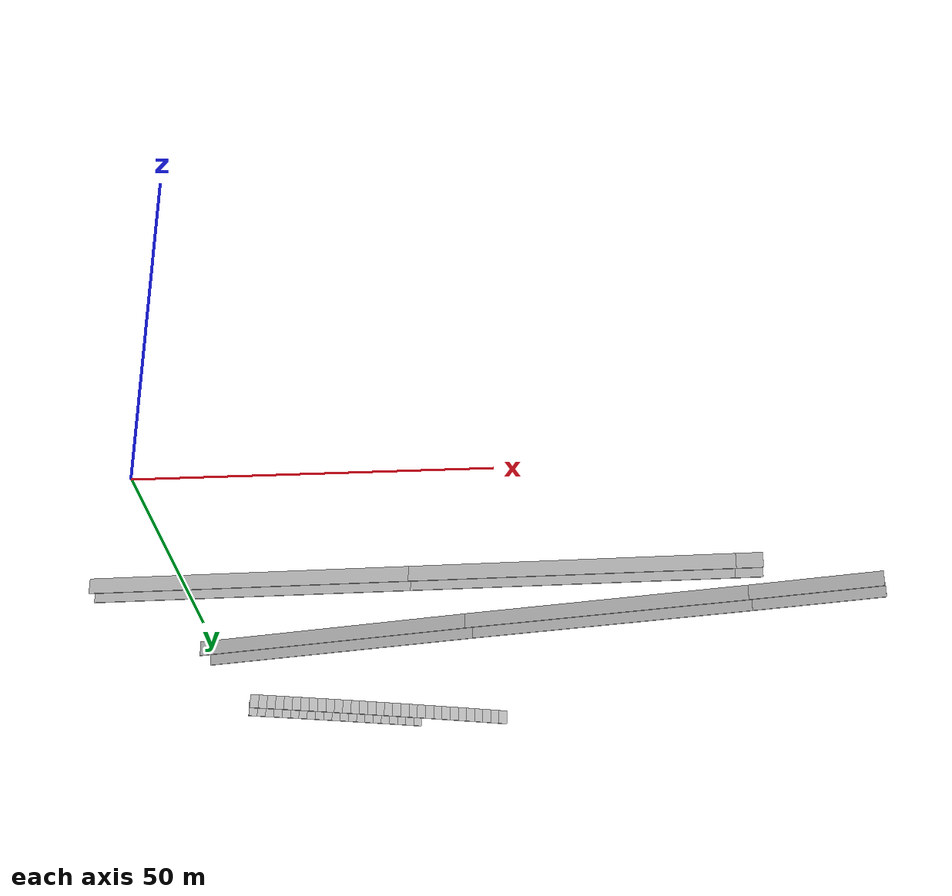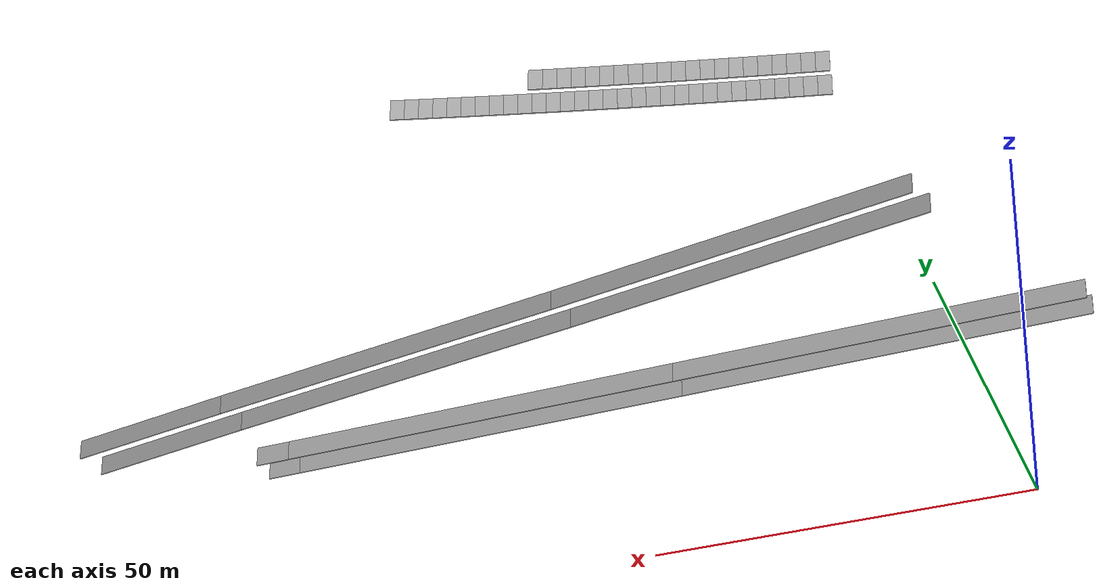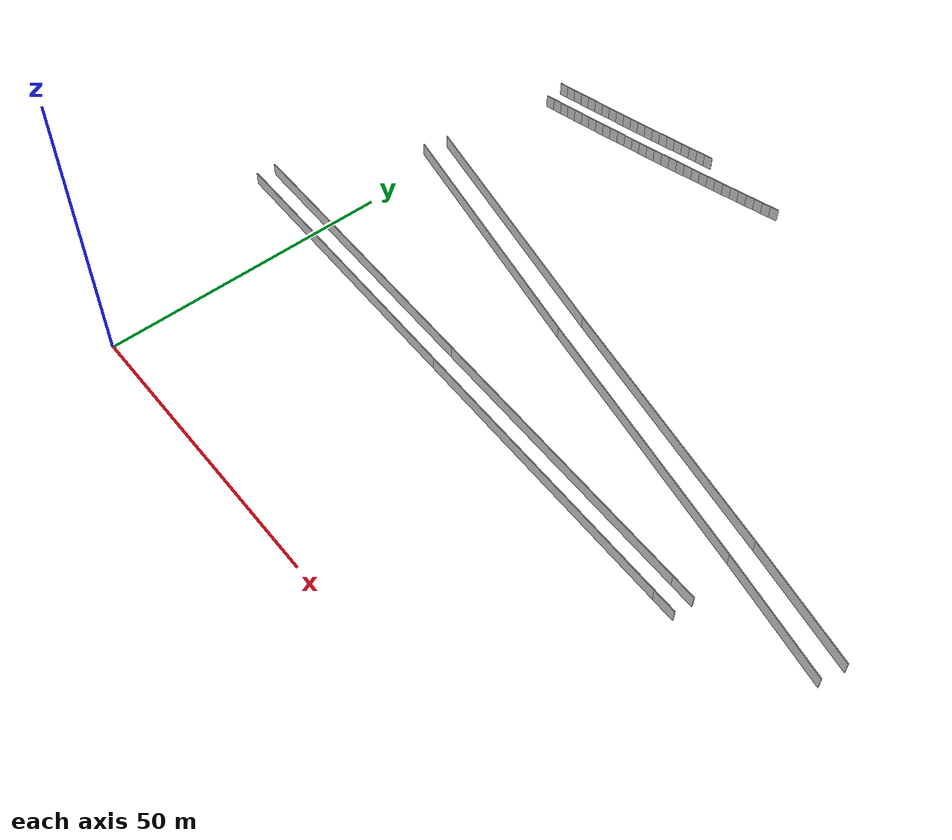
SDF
<?xml version="1.0" ?>
<sdf version="1.6">
  <model name="sps_1501">
    <pose frame="">0 0 0 0 -0 0</pose>
    <static>1</static>
    <self_collide>0</self_collide>
    <allow_auto_disable>0</allow_auto_disable>
    <link name="Wall54">
      <kinematic>0</kinematic>
      <gravity>1</gravity>
      <self_collide>0</self_collide>
      <collision name="collision">
        <geometry>
          <box>
            <size>21.0271 0.15 2.5</size>
          </box>
        </geometry>
        <pose frame="">0 0 0 0 -0 0</pose>
      </collision>
      <visual name="visual">
        <geometry>
          <box>
            <size>21.0271 0.15 2.5</size>
          </box>
        </geometry>
        <pose frame="">0 0 0 0 -0 0</pose>
        <cast_shadows>1</cast_shadows>
        <transparency>0.0</transparency>
      </visual>
      <pose frame="">97.2691 44.9379 1.25 0 0 -0.189984</pose>
    </link>
    <link name="Wall241">
      <kinematic>0</kinematic>
      <gravity>1</gravity>
      <self_collide>0</self_collide>
      <collision name="collision">
        <geometry>
          <box>
            <size>20.976 0.15 2.5</size>
          </box>
        </geometry>
        <pose frame="">0 0 0 0 -0 0</pose>
      </collision>
      <visual name="visual">
        <geometry>
          <box>
            <size>20.976 0.15 2.5</size>
          </box>
        </geometry>
        <pose frame="">0 0 0 0 -0 0</pose>
        <cast_shadows>1</cast_shadows>
        <transparency>0.0</transparency>
      </visual>
      <pose frame="">98.0431 49.269 1.25 0 -0 2.9516</pose>
    </link>
    <link name="Wall456">
      <kinematic>0</kinematic>
      <gravity>1</gravity>
      <self_collide>0</self_collide>
      <collision name="collision">
        <geometry>
          <box>
            <size>4.10939 0.15 2.5</size>
          </box>
        </geometry>
        <pose frame="">0 0 0 0 -0 0</pose>
      </collision>
      <visual name="visual">
        <geometry>
          <box>
            <size>4.10939 0.15 2.5</size>
          </box>
        </geometry>
        <pose frame="">0 0 0 0 -0 0</pose>
        <cast_shadows>1</cast_shadows>
        <transparency>0.0</transparency>
      </visual>
      <pose frame="">86.5235 34.9709 1.25 0 -0 3.11591</pose>
    </link>
    <link name="Wall457">
      <kinematic>0</kinematic>
      <gravity>1</gravity>
      <self_collide>0</self_collide>
      <collision name="collision">
        <geometry>
          <box>
            <size>50.0165 0.15 2.5</size>
          </box>
        </geometry>
        <pose frame="">0 0 0 0 -0 0</pose>
      </collision>
      <visual name="visual">
        <geometry>
          <box>
            <size>50.0165 0.15 2.5</size>
          </box>
        </geometry>
        <pose frame="">0 0 0 0 -0 0</pose>
        <cast_shadows>1</cast_shadows>
        <transparency>0.0</transparency>
      </visual>
      <pose frame="">59.4694 35.6658 1.25 0 -0 3.11591</pose>
    </link>
    <link name="Wall458">
      <kinematic>0</kinematic>
      <gravity>1</gravity>
      <self_collide>0</self_collide>
      <collision name="collision">
        <geometry>
          <box>
            <size>50.0165 0.15 2.5</size>
          </box>
        </geometry>
        <pose frame="">0 0 0 0 -0 0</pose>
      </collision>
      <visual name="visual">
        <geometry>
          <box>
            <size>50.0165 0.15 2.5</size>
          </box>
        </geometry>
        <pose frame="">0 0 0 0 -0 0</pose>
        <cast_shadows>1</cast_shadows>
        <transparency>0.0</transparency>
      </visual>
      <pose frame="">9.46944 36.95 1.25 0 -0 3.11591</pose>
    </link>
    <link name="Wall467">
      <kinematic>0</kinematic>
      <gravity>1</gravity>
      <self_collide>0</self_collide>
      <collision name="collision">
        <geometry>
          <box>
            <size>50.0165 0.15 2.5</size>
          </box>
        </geometry>
        <pose frame="">0 0 0 0 -0 0</pose>
      </collision>
      <visual name="visual">
        <geometry>
          <box>
            <size>50.0165 0.15 2.5</size>
          </box>
        </geometry>
        <pose frame="">0 0 0 0 -0 0</pose>
        <cast_shadows>1</cast_shadows>
        <transparency>0.0</transparency>
      </visual>
      <pose frame="">9.46944 40.4509 1.25 0 0 -0.0256802</pose>
    </link>
    <link name="Wall468">
      <kinematic>0</kinematic>
      <gravity>1</gravity>
      <self_collide>0</self_collide>
      <collision name="collision">
        <geometry>
          <box>
            <size>50.0165 0.15 2.5</size>
          </box>
        </geometry>
        <pose frame="">0 0 0 0 -0 0</pose>
      </collision>
      <visual name="visual">
        <geometry>
          <box>
            <size>50.0165 0.15 2.5</size>
          </box>
        </geometry>
        <pose frame="">0 0 0 0 -0 0</pose>
        <cast_shadows>1</cast_shadows>
        <transparency>0.0</transparency>
      </visual>
      <pose frame="">59.4694 39.1666 1.25 0 0 -0.0256802</pose>
    </link>
    <link name="Wall469">
      <kinematic>0</kinematic>
      <gravity>1</gravity>
      <self_collide>0</self_collide>
      <collision name="collision">
        <geometry>
          <box>
            <size>4.2376 0.15 2.5</size>
          </box>
        </geometry>
        <pose frame="">0 0 0 0 -0 0</pose>
      </collision>
      <visual name="visual">
        <geometry>
          <box>
            <size>4.2376 0.15 2.5</size>
          </box>
        </geometry>
        <pose frame="">0 0 0 0 -0 0</pose>
        <cast_shadows>1</cast_shadows>
        <transparency>0.0</transparency>
      </visual>
      <pose frame="">86.5875 38.4701 1.25 0 0 -0.0256802</pose>
    </link>
    <link name="Wall3619">
      <kinematic>0</kinematic>
      <gravity>1</gravity>
      <self_collide>0</self_collide>
      <collision name="collision">
        <geometry>
          <box>
            <size>45.9354 0.15 2.5</size>
          </box>
        </geometry>
        <pose frame="">0 0 0 0 -0 0</pose>
      </collision>
      <visual name="visual">
        <geometry>
          <box>
            <size>45.9354 0.15 2.5</size>
          </box>
        </geometry>
        <pose frame="">0 0 0 0 -0 0</pose>
        <cast_shadows>1</cast_shadows>
        <transparency>0.0</transparency>
      </visual>
      <pose frame="">64.3456 51.0216 1.25 0 -0 2.96219</pose>
    </link>
    <link name="Wall3620">
      <kinematic>0</kinematic>
      <gravity>1</gravity>
      <self_collide>0</self_collide>
      <collision name="collision">
        <geometry>
          <box>
            <size>45.9354 0.15 2.5</size>
          </box>
        </geometry>
        <pose frame="">0 0 0 0 -0 0</pose>
      </collision>
      <visual name="visual">
        <geometry>
          <box>
            <size>45.9354 0.15 2.5</size>
          </box>
        </geometry>
        <pose frame="">0 0 0 0 -0 0</pose>
        <cast_shadows>1</cast_shadows>
        <transparency>0.0</transparency>
      </visual>
      <pose frame="">19.2007 59.5019 1.25 0 -0 2.94963</pose>
    </link>
    <link name="Wall3846">
      <kinematic>0</kinematic>
      <gravity>1</gravity>
      <self_collide>0</self_collide>
      <collision name="collision">
        <geometry>
          <box>
            <size>1.49651 0.15 2.5</size>
          </box>
        </geometry>
        <pose frame="">0 0 0 0 -0 0</pose>
      </collision>
      <visual name="visual">
        <geometry>
          <box>
            <size>1.49651 0.15 2.5</size>
          </box>
        </geometry>
        <pose frame="">0 0 0 0 -0 0</pose>
        <cast_shadows>1</cast_shadows>
        <transparency>0.0</transparency>
      </visual>
      <pose frame="">0.447166 92.7136 1.25 0 -0 0.224402</pose>
    </link>
    <link name="Wall3847">
      <kinematic>0</kinematic>
      <gravity>1</gravity>
      <self_collide>0</self_collide>
      <collision name="collision">
        <geometry>
          <box>
            <size>1.49664 0.15 2.5</size>
          </box>
        </geometry>
        <pose frame="">0 0 0 0 -0 0</pose>
      </collision>
      <visual name="visual">
        <geometry>
          <box>
            <size>1.49664 0.15 2.5</size>
          </box>
        </geometry>
        <pose frame="">0 0 0 0 -0 0</pose>
        <cast_shadows>1</cast_shadows>
        <transparency>0.0</transparency>
      </visual>
      <pose frame="">1.90597 93.0477 1.25 0 -0 0.225888</pose>
    </link>
    <link name="Wall3848">
      <kinematic>0</kinematic>
      <gravity>1</gravity>
      <self_collide>0</self_collide>
      <collision name="collision">
        <geometry>
          <box>
            <size>1.49658 0.15 2.5</size>
          </box>
        </geometry>
        <pose frame="">0 0 0 0 -0 0</pose>
      </collision>
      <visual name="visual">
        <geometry>
          <box>
            <size>1.49658 0.15 2.5</size>
          </box>
        </geometry>
        <pose frame="">0 0 0 0 -0 0</pose>
        <cast_shadows>1</cast_shadows>
        <transparency>0.0</transparency>
      </visual>
      <pose frame="">3.36428 93.3841 1.25 0 -0 0.227529</pose>
    </link>
    <link name="Wall3849">
      <kinematic>0</kinematic>
      <gravity>1</gravity>
      <self_collide>0</self_collide>
      <collision name="collision">
        <geometry>
          <box>
            <size>1.49644 0.15 2.5</size>
          </box>
        </geometry>
        <pose frame="">0 0 0 0 -0 0</pose>
      </collision>
      <visual name="visual">
        <geometry>
          <box>
            <size>1.49644 0.15 2.5</size>
          </box>
        </geometry>
        <pose frame="">0 0 0 0 -0 0</pose>
        <cast_shadows>1</cast_shadows>
        <transparency>0.0</transparency>
      </visual>
      <pose frame="">4.82198 93.7227 1.25 0 -0 0.228933</pose>
    </link>
    <link name="Wall3850">
      <kinematic>0</kinematic>
      <gravity>1</gravity>
      <self_collide>0</self_collide>
      <collision name="collision">
        <geometry>
          <box>
            <size>1.49662 0.15 2.5</size>
          </box>
        </geometry>
        <pose frame="">0 0 0 0 -0 0</pose>
      </collision>
      <visual name="visual">
        <geometry>
          <box>
            <size>1.49662 0.15 2.5</size>
          </box>
        </geometry>
        <pose frame="">0 0 0 0 -0 0</pose>
        <cast_shadows>1</cast_shadows>
        <transparency>0.0</transparency>
      </visual>
      <pose frame="">6.27917 94.0636 1.25 0 -0 0.230705</pose>
    </link>
    <link name="Wall3851">
      <kinematic>0</kinematic>
      <gravity>1</gravity>
      <self_collide>0</self_collide>
      <collision name="collision">
        <geometry>
          <box>
            <size>1.49663 0.15 2.5</size>
          </box>
        </geometry>
        <pose frame="">0 0 0 0 -0 0</pose>
      </collision>
      <visual name="visual">
        <geometry>
          <box>
            <size>1.49663 0.15 2.5</size>
          </box>
        </geometry>
        <pose frame="">0 0 0 0 -0 0</pose>
        <cast_shadows>1</cast_shadows>
        <transparency>0.0</transparency>
      </visual>
      <pose frame="">7.73586 94.407 1.25 0 -0 0.232338</pose>
    </link>
    <link name="Wall3852">
      <kinematic>0</kinematic>
      <gravity>1</gravity>
      <self_collide>0</self_collide>
      <collision name="collision">
        <geometry>
          <box>
            <size>1.49655 0.15 2.5</size>
          </box>
        </geometry>
        <pose frame="">0 0 0 0 -0 0</pose>
      </collision>
      <visual name="visual">
        <geometry>
          <box>
            <size>1.49655 0.15 2.5</size>
          </box>
        </geometry>
        <pose frame="">0 0 0 0 -0 0</pose>
        <cast_shadows>1</cast_shadows>
        <transparency>0.0</transparency>
      </visual>
      <pose frame="">9.19198 94.7527 1.25 0 -0 0.23386</pose>
    </link>
    <link name="Wall3853">
      <kinematic>0</kinematic>
      <gravity>1</gravity>
      <self_collide>0</self_collide>
      <collision name="collision">
        <geometry>
          <box>
            <size>1.49647 0.15 2.5</size>
          </box>
        </geometry>
        <pose frame="">0 0 0 0 -0 0</pose>
      </collision>
      <visual name="visual">
        <geometry>
          <box>
            <size>1.49647 0.15 2.5</size>
          </box>
        </geometry>
        <pose frame="">0 0 0 0 -0 0</pose>
        <cast_shadows>1</cast_shadows>
        <transparency>0.0</transparency>
      </visual>
      <pose frame="">10.6475 95.1006 1.25 0 -0 0.235383</pose>
    </link>
    <link name="Wall3854">
      <kinematic>0</kinematic>
      <gravity>1</gravity>
      <self_collide>0</self_collide>
      <collision name="collision">
        <geometry>
          <box>
            <size>1.49656 0.15 2.5</size>
          </box>
        </geometry>
        <pose frame="">0 0 0 0 -0 0</pose>
      </collision>
      <visual name="visual">
        <geometry>
          <box>
            <size>1.49656 0.15 2.5</size>
          </box>
        </geometry>
        <pose frame="">0 0 0 0 -0 0</pose>
        <cast_shadows>1</cast_shadows>
        <transparency>0.0</transparency>
      </visual>
      <pose frame="">12.1025 95.4507 1.25 0 -0 0.236877</pose>
    </link>
    <link name="Wall3855">
      <kinematic>0</kinematic>
      <gravity>1</gravity>
      <self_collide>0</self_collide>
      <collision name="collision">
        <geometry>
          <box>
            <size>1.49635 0.15 2.5</size>
          </box>
        </geometry>
        <pose frame="">0 0 0 0 -0 0</pose>
      </collision>
      <visual name="visual">
        <geometry>
          <box>
            <size>1.49635 0.15 2.5</size>
          </box>
        </geometry>
        <pose frame="">0 0 0 0 -0 0</pose>
        <cast_shadows>1</cast_shadows>
        <transparency>0.0</transparency>
      </visual>
      <pose frame="">13.5568 95.8031 1.25 0 -0 0.238548</pose>
    </link>
    <link name="Wall3856">
      <kinematic>0</kinematic>
      <gravity>1</gravity>
      <self_collide>0</self_collide>
      <collision name="collision">
        <geometry>
          <box>
            <size>1.49658 0.15 2.5</size>
          </box>
        </geometry>
        <pose frame="">0 0 0 0 -0 0</pose>
      </collision>
      <visual name="visual">
        <geometry>
          <box>
            <size>1.49658 0.15 2.5</size>
          </box>
        </geometry>
        <pose frame="">0 0 0 0 -0 0</pose>
        <cast_shadows>1</cast_shadows>
        <transparency>0.0</transparency>
      </visual>
      <pose frame="">15.0106 96.1579 1.25 0 -0 0.240191</pose>
    </link>
    <link name="Wall3857">
      <kinematic>0</kinematic>
      <gravity>1</gravity>
      <self_collide>0</self_collide>
      <collision name="collision">
        <geometry>
          <box>
            <size>1.49673 0.15 2.5</size>
          </box>
        </geometry>
        <pose frame="">0 0 0 0 -0 0</pose>
      </collision>
      <visual name="visual">
        <geometry>
          <box>
            <size>1.49673 0.15 2.5</size>
          </box>
        </geometry>
        <pose frame="">0 0 0 0 -0 0</pose>
        <cast_shadows>1</cast_shadows>
        <transparency>0.0</transparency>
      </visual>
      <pose frame="">16.464 96.5151 1.25 0 -0 0.241804</pose>
    </link>
    <link name="Wall3858">
      <kinematic>0</kinematic>
      <gravity>1</gravity>
      <self_collide>0</self_collide>
      <collision name="collision">
        <geometry>
          <box>
            <size>1.49649 0.15 2.5</size>
          </box>
        </geometry>
        <pose frame="">0 0 0 0 -0 0</pose>
      </collision>
      <visual name="visual">
        <geometry>
          <box>
            <size>1.49649 0.15 2.5</size>
          </box>
        </geometry>
        <pose frame="">0 0 0 0 -0 0</pose>
        <cast_shadows>1</cast_shadows>
        <transparency>0.0</transparency>
      </visual>
      <pose frame="">17.9168 96.8746 1.25 0 -0 0.243356</pose>
    </link>
    <link name="Wall3859">
      <kinematic>0</kinematic>
      <gravity>1</gravity>
      <self_collide>0</self_collide>
      <collision name="collision">
        <geometry>
          <box>
            <size>1.49649 0.15 2.5</size>
          </box>
        </geometry>
        <pose frame="">0 0 0 0 -0 0</pose>
      </collision>
      <visual name="visual">
        <geometry>
          <box>
            <size>1.49649 0.15 2.5</size>
          </box>
        </geometry>
        <pose frame="">0 0 0 0 -0 0</pose>
        <cast_shadows>1</cast_shadows>
        <transparency>0.0</transparency>
      </visual>
      <pose frame="">19.3689 97.2363 1.25 0 -0 0.24487</pose>
    </link>
    <link name="Wall3860">
      <kinematic>0</kinematic>
      <gravity>1</gravity>
      <self_collide>0</self_collide>
      <collision name="collision">
        <geometry>
          <box>
            <size>1.49643 0.15 2.5</size>
          </box>
        </geometry>
        <pose frame="">0 0 0 0 -0 0</pose>
      </collision>
      <visual name="visual">
        <geometry>
          <box>
            <size>1.49643 0.15 2.5</size>
          </box>
        </geometry>
        <pose frame="">0 0 0 0 -0 0</pose>
        <cast_shadows>1</cast_shadows>
        <transparency>0.0</transparency>
      </visual>
      <pose frame="">20.8205 97.6003 1.25 0 -0 0.246561</pose>
    </link>
    <link name="Wall3861">
      <kinematic>0</kinematic>
      <gravity>1</gravity>
      <self_collide>0</self_collide>
      <collision name="collision">
        <geometry>
          <box>
            <size>1.49646 0.15 2.5</size>
          </box>
        </geometry>
        <pose frame="">0 0 0 0 -0 0</pose>
      </collision>
      <visual name="visual">
        <geometry>
          <box>
            <size>1.49646 0.15 2.5</size>
          </box>
        </geometry>
        <pose frame="">0 0 0 0 -0 0</pose>
        <cast_shadows>1</cast_shadows>
        <transparency>0.0</transparency>
      </visual>
      <pose frame="">22.2714 97.9667 1.25 0 -0 0.248154</pose>
    </link>
    <link name="Wall3862">
      <kinematic>0</kinematic>
      <gravity>1</gravity>
      <self_collide>0</self_collide>
      <collision name="collision">
        <geometry>
          <box>
            <size>1.49656 0.15 2.5</size>
          </box>
        </geometry>
        <pose frame="">0 0 0 0 -0 0</pose>
      </collision>
      <visual name="visual">
        <geometry>
          <box>
            <size>1.49656 0.15 2.5</size>
          </box>
        </geometry>
        <pose frame="">0 0 0 0 -0 0</pose>
        <cast_shadows>1</cast_shadows>
        <transparency>0.0</transparency>
      </visual>
      <pose frame="">23.7218 98.3353 1.25 0 -0 0.249568</pose>
    </link>
    <link name="Wall3863">
      <kinematic>0</kinematic>
      <gravity>1</gravity>
      <self_collide>0</self_collide>
      <collision name="collision">
        <geometry>
          <box>
            <size>1.4966 0.15 2.5</size>
          </box>
        </geometry>
        <pose frame="">0 0 0 0 -0 0</pose>
      </collision>
      <visual name="visual">
        <geometry>
          <box>
            <size>1.4966 0.15 2.5</size>
          </box>
        </geometry>
        <pose frame="">0 0 0 0 -0 0</pose>
        <cast_shadows>1</cast_shadows>
        <transparency>0.0</transparency>
      </visual>
      <pose frame="">25.1717 98.7062 1.25 0 -0 0.251329</pose>
    </link>
    <link name="Wall3864">
      <kinematic>0</kinematic>
      <gravity>1</gravity>
      <self_collide>0</self_collide>
      <collision name="collision">
        <geometry>
          <box>
            <size>1.49657 0.15 2.5</size>
          </box>
        </geometry>
        <pose frame="">0 0 0 0 -0 0</pose>
      </collision>
      <visual name="visual">
        <geometry>
          <box>
            <size>1.49657 0.15 2.5</size>
          </box>
        </geometry>
        <pose frame="">0 0 0 0 -0 0</pose>
        <cast_shadows>1</cast_shadows>
        <transparency>0.0</transparency>
      </visual>
      <pose frame="">26.621 99.0794 1.25 0 -0 0.252724</pose>
    </link>
    <link name="Wall3865">
      <kinematic>0</kinematic>
      <gravity>1</gravity>
      <self_collide>0</self_collide>
      <collision name="collision">
        <geometry>
          <box>
            <size>1.49657 0.15 2.5</size>
          </box>
        </geometry>
        <pose frame="">0 0 0 0 -0 0</pose>
      </collision>
      <visual name="visual">
        <geometry>
          <box>
            <size>1.49657 0.15 2.5</size>
          </box>
        </geometry>
        <pose frame="">0 0 0 0 -0 0</pose>
        <cast_shadows>1</cast_shadows>
        <transparency>0.0</transparency>
      </visual>
      <pose frame="">28.0697 99.4549 1.25 0 -0 0.254494</pose>
    </link>
    <link name="Wall3866">
      <kinematic>0</kinematic>
      <gravity>1</gravity>
      <self_collide>0</self_collide>
      <collision name="collision">
        <geometry>
          <box>
            <size>1.49661 0.15 2.5</size>
          </box>
        </geometry>
        <pose frame="">0 0 0 0 -0 0</pose>
      </collision>
      <visual name="visual">
        <geometry>
          <box>
            <size>1.49661 0.15 2.5</size>
          </box>
        </geometry>
        <pose frame="">0 0 0 0 -0 0</pose>
        <cast_shadows>1</cast_shadows>
        <transparency>0.0</transparency>
      </visual>
      <pose frame="">29.5178 99.8328 1.25 0 -0 0.256047</pose>
    </link>
    <link name="Wall7394">
      <kinematic>0</kinematic>
      <gravity>1</gravity>
      <self_collide>0</self_collide>
      <collision name="collision">
        <geometry>
          <box>
            <size>45.8892 0.15 2.5</size>
          </box>
        </geometry>
        <pose frame="">0 0 0 0 -0 0</pose>
      </collision>
      <visual name="visual">
        <geometry>
          <box>
            <size>45.8892 0.15 2.5</size>
          </box>
        </geometry>
        <pose frame="">0 0 0 0 -0 0</pose>
        <cast_shadows>1</cast_shadows>
        <transparency>0.0</transparency>
      </visual>
      <pose frame="">65.1674 55.3437 1.25 0 -0 2.9622</pose>
    </link>
    <link name="Wall7395">
      <kinematic>0</kinematic>
      <gravity>1</gravity>
      <self_collide>0</self_collide>
      <collision name="collision">
        <geometry>
          <box>
            <size>45.8889 0.15 2.5</size>
          </box>
        </geometry>
        <pose frame="">0 0 0 0 -0 0</pose>
      </collision>
      <visual name="visual">
        <geometry>
          <box>
            <size>45.8889 0.15 2.5</size>
          </box>
        </geometry>
        <pose frame="">0 0 0 0 -0 0</pose>
        <cast_shadows>1</cast_shadows>
        <transparency>0.0</transparency>
      </visual>
      <pose frame="">20.068 63.8153 1.25 0 -0 2.94962</pose>
    </link>
    <link name="Wall7621">
      <kinematic>0</kinematic>
      <gravity>1</gravity>
      <self_collide>0</self_collide>
      <collision name="collision">
        <geometry>
          <box>
            <size>1.50307 0.15 2.5</size>
          </box>
        </geometry>
        <pose frame="">0 0 0 0 -0 0</pose>
      </collision>
      <visual name="visual">
        <geometry>
          <box>
            <size>1.50307 0.15 2.5</size>
          </box>
        </geometry>
        <pose frame="">0 0 0 0 -0 0</pose>
        <cast_shadows>1</cast_shadows>
        <transparency>0.0</transparency>
      </visual>
      <pose frame="">1.37115 88.6775 1.25 0 -0 0.224364</pose>
    </link>
    <link name="Wall7622">
      <kinematic>0</kinematic>
      <gravity>1</gravity>
      <self_collide>0</self_collide>
      <collision name="collision">
        <geometry>
          <box>
            <size>1.50296 0.15 2.5</size>
          </box>
        </geometry>
        <pose frame="">0 0 0 0 -0 0</pose>
      </collision>
      <visual name="visual">
        <geometry>
          <box>
            <size>1.50296 0.15 2.5</size>
          </box>
        </geometry>
        <pose frame="">0 0 0 0 -0 0</pose>
        <cast_shadows>1</cast_shadows>
        <transparency>0.0</transparency>
      </visual>
      <pose frame="">2.83623 89.013 1.25 0 -0 0.22588</pose>
    </link>
    <link name="Wall7623">
      <kinematic>0</kinematic>
      <gravity>1</gravity>
      <self_collide>0</self_collide>
      <collision name="collision">
        <geometry>
          <box>
            <size>1.50314 0.15 2.5</size>
          </box>
        </geometry>
        <pose frame="">0 0 0 0 -0 0</pose>
      </collision>
      <visual name="visual">
        <geometry>
          <box>
            <size>1.50314 0.15 2.5</size>
          </box>
        </geometry>
        <pose frame="">0 0 0 0 -0 0</pose>
        <cast_shadows>1</cast_shadows>
        <transparency>0.0</transparency>
      </visual>
      <pose frame="">4.30083 89.3508 1.25 0 -0 0.227478</pose>
    </link>
    <link name="Wall7624">
      <kinematic>0</kinematic>
      <gravity>1</gravity>
      <self_collide>0</self_collide>
      <collision name="collision">
        <geometry>
          <box>
            <size>1.50304 0.15 2.5</size>
          </box>
        </geometry>
        <pose frame="">0 0 0 0 -0 0</pose>
      </collision>
      <visual name="visual">
        <geometry>
          <box>
            <size>1.50304 0.15 2.5</size>
          </box>
        </geometry>
        <pose frame="">0 0 0 0 -0 0</pose>
        <cast_shadows>1</cast_shadows>
        <transparency>0.0</transparency>
      </visual>
      <pose frame="">5.76495 89.6909 1.25 0 -0 0.228993</pose>
    </link>
    <link name="Wall7625">
      <kinematic>0</kinematic>
      <gravity>1</gravity>
      <self_collide>0</self_collide>
      <collision name="collision">
        <geometry>
          <box>
            <size>1.50305 0.15 2.5</size>
          </box>
        </geometry>
        <pose frame="">0 0 0 0 -0 0</pose>
      </collision>
      <visual name="visual">
        <geometry>
          <box>
            <size>1.50305 0.15 2.5</size>
          </box>
        </geometry>
        <pose frame="">0 0 0 0 -0 0</pose>
        <cast_shadows>1</cast_shadows>
        <transparency>0.0</transparency>
      </visual>
      <pose frame="">7.22845 90.0334 1.25 0 -0 0.230786</pose>
    </link>
    <link name="Wall7626">
      <kinematic>0</kinematic>
      <gravity>1</gravity>
      <self_collide>0</self_collide>
      <collision name="collision">
        <geometry>
          <box>
            <size>1.50319 0.15 2.5</size>
          </box>
        </geometry>
        <pose frame="">0 0 0 0 -0 0</pose>
      </collision>
      <visual name="visual">
        <geometry>
          <box>
            <size>1.50319 0.15 2.5</size>
          </box>
        </geometry>
        <pose frame="">0 0 0 0 -0 0</pose>
        <cast_shadows>1</cast_shadows>
        <transparency>0.0</transparency>
      </visual>
      <pose frame="">8.69146 90.3783 1.25 0 -0 0.232265</pose>
    </link>
    <link name="Wall7627">
      <kinematic>0</kinematic>
      <gravity>1</gravity>
      <self_collide>0</self_collide>
      <collision name="collision">
        <geometry>
          <box>
            <size>1.50309 0.15 2.5</size>
          </box>
        </geometry>
        <pose frame="">0 0 0 0 -0 0</pose>
      </collision>
      <visual name="visual">
        <geometry>
          <box>
            <size>1.50309 0.15 2.5</size>
          </box>
        </geometry>
        <pose frame="">0 0 0 0 -0 0</pose>
        <cast_shadows>1</cast_shadows>
        <transparency>0.0</transparency>
      </visual>
      <pose frame="">10.154 90.7255 1.25 0 -0 0.233909</pose>
    </link>
    <link name="Wall7628">
      <kinematic>0</kinematic>
      <gravity>1</gravity>
      <self_collide>0</self_collide>
      <collision name="collision">
        <geometry>
          <box>
            <size>1.50302 0.15 2.5</size>
          </box>
        </geometry>
        <pose frame="">0 0 0 0 -0 0</pose>
      </collision>
      <visual name="visual">
        <geometry>
          <box>
            <size>1.50302 0.15 2.5</size>
          </box>
        </geometry>
        <pose frame="">0 0 0 0 -0 0</pose>
        <cast_shadows>1</cast_shadows>
        <transparency>0.0</transparency>
      </visual>
      <pose frame="">11.6158 91.0749 1.25 0 -0 0.235297</pose>
    </link>
    <link name="Wall7629">
      <kinematic>0</kinematic>
      <gravity>1</gravity>
      <self_collide>0</self_collide>
      <collision name="collision">
        <geometry>
          <box>
            <size>1.50305 0.15 2.5</size>
          </box>
        </geometry>
        <pose frame="">0 0 0 0 -0 0</pose>
      </collision>
      <visual name="visual">
        <geometry>
          <box>
            <size>1.50305 0.15 2.5</size>
          </box>
        </geometry>
        <pose frame="">0 0 0 0 -0 0</pose>
        <cast_shadows>1</cast_shadows>
        <transparency>0.0</transparency>
      </visual>
      <pose frame="">13.0771 91.4266 1.25 0 -0 0.23709</pose>
    </link>
    <link name="Wall7630">
      <kinematic>0</kinematic>
      <gravity>1</gravity>
      <self_collide>0</self_collide>
      <collision name="collision">
        <geometry>
          <box>
            <size>1.50319 0.15 2.5</size>
          </box>
        </geometry>
        <pose frame="">0 0 0 0 -0 0</pose>
      </collision>
      <visual name="visual">
        <geometry>
          <box>
            <size>1.50319 0.15 2.5</size>
          </box>
        </geometry>
        <pose frame="">0 0 0 0 -0 0</pose>
        <cast_shadows>1</cast_shadows>
        <transparency>0.0</transparency>
      </visual>
      <pose frame="">14.538 91.7807 1.25 0 -0 0.238528</pose>
    </link>
    <link name="Wall7631">
      <kinematic>0</kinematic>
      <gravity>1</gravity>
      <self_collide>0</self_collide>
      <collision name="collision">
        <geometry>
          <box>
            <size>1.50312 0.15 2.5</size>
          </box>
        </geometry>
        <pose frame="">0 0 0 0 -0 0</pose>
      </collision>
      <visual name="visual">
        <geometry>
          <box>
            <size>1.50312 0.15 2.5</size>
          </box>
        </geometry>
        <pose frame="">0 0 0 0 -0 0</pose>
        <cast_shadows>1</cast_shadows>
        <transparency>0.0</transparency>
      </visual>
      <pose frame="">15.9983 92.1371 1.25 0 -0 0.240212</pose>
    </link>
    <link name="Wall7632">
      <kinematic>0</kinematic>
      <gravity>1</gravity>
      <self_collide>0</self_collide>
      <collision name="collision">
        <geometry>
          <box>
            <size>1.50311 0.15 2.5</size>
          </box>
        </geometry>
        <pose frame="">0 0 0 0 -0 0</pose>
      </collision>
      <visual name="visual">
        <geometry>
          <box>
            <size>1.50311 0.15 2.5</size>
          </box>
        </geometry>
        <pose frame="">0 0 0 0 -0 0</pose>
        <cast_shadows>1</cast_shadows>
        <transparency>0.0</transparency>
      </visual>
      <pose frame="">17.4579 92.4958 1.25 0 -0 0.241719</pose>
    </link>
    <link name="Wall7633">
      <kinematic>0</kinematic>
      <gravity>1</gravity>
      <self_collide>0</self_collide>
      <collision name="collision">
        <geometry>
          <box>
            <size>1.50315 0.15 2.5</size>
          </box>
        </geometry>
        <pose frame="">0 0 0 0 -0 0</pose>
      </collision>
      <visual name="visual">
        <geometry>
          <box>
            <size>1.50315 0.15 2.5</size>
          </box>
        </geometry>
        <pose frame="">0 0 0 0 -0 0</pose>
        <cast_shadows>1</cast_shadows>
        <transparency>0.0</transparency>
      </visual>
      <pose frame="">18.917 92.8569 1.25 0 -0 0.243511</pose>
    </link>
    <link name="Wall7634">
      <kinematic>0</kinematic>
      <gravity>1</gravity>
      <self_collide>0</self_collide>
      <collision name="collision">
        <geometry>
          <box>
            <size>1.50303 0.15 2.5</size>
          </box>
        </geometry>
        <pose frame="">0 0 0 0 -0 0</pose>
      </collision>
      <visual name="visual">
        <geometry>
          <box>
            <size>1.50303 0.15 2.5</size>
          </box>
        </geometry>
        <pose frame="">0 0 0 0 -0 0</pose>
        <cast_shadows>1</cast_shadows>
        <transparency>0.0</transparency>
      </visual>
      <pose frame="">20.3755 93.2203 1.25 0 -0 0.24487</pose>
    </link>
    <link name="Wall7635">
      <kinematic>0</kinematic>
      <gravity>1</gravity>
      <self_collide>0</self_collide>
      <collision name="collision">
        <geometry>
          <box>
            <size>1.50304 0.15 2.5</size>
          </box>
        </geometry>
        <pose frame="">0 0 0 0 -0 0</pose>
      </collision>
      <visual name="visual">
        <geometry>
          <box>
            <size>1.50304 0.15 2.5</size>
          </box>
        </geometry>
        <pose frame="">0 0 0 0 -0 0</pose>
        <cast_shadows>1</cast_shadows>
        <transparency>0.0</transparency>
      </visual>
      <pose frame="">21.8335 93.5858 1.25 0 -0 0.246417</pose>
    </link>
    <link name="Wall7636">
      <kinematic>0</kinematic>
      <gravity>1</gravity>
      <self_collide>0</self_collide>
      <collision name="collision">
        <geometry>
          <box>
            <size>1.50296 0.15 2.5</size>
          </box>
        </geometry>
        <pose frame="">0 0 0 0 -0 0</pose>
      </collision>
      <visual name="visual">
        <geometry>
          <box>
            <size>1.50296 0.15 2.5</size>
          </box>
        </geometry>
        <pose frame="">0 0 0 0 -0 0</pose>
        <cast_shadows>1</cast_shadows>
        <transparency>0.0</transparency>
      </visual>
      <pose frame="">23.2908 93.9536 1.25 0 -0 0.248022</pose>
    </link>
    <link name="Wall7637">
      <kinematic>0</kinematic>
      <gravity>1</gravity>
      <self_collide>0</self_collide>
      <collision name="collision">
        <geometry>
          <box>
            <size>1.50303 0.15 2.5</size>
          </box>
        </geometry>
        <pose frame="">0 0 0 0 -0 0</pose>
      </collision>
      <visual name="visual">
        <geometry>
          <box>
            <size>1.50303 0.15 2.5</size>
          </box>
        </geometry>
        <pose frame="">0 0 0 0 -0 0</pose>
        <cast_shadows>1</cast_shadows>
        <transparency>0.0</transparency>
      </visual>
      <pose frame="">24.7475 94.3238 1.25 0 -0 0.249686</pose>
    </link>
    <link name="Wall7638">
      <kinematic>0</kinematic>
      <gravity>1</gravity>
      <self_collide>0</self_collide>
      <collision name="collision">
        <geometry>
          <box>
            <size>1.50322 0.15 2.5</size>
          </box>
        </geometry>
        <pose frame="">0 0 0 0 -0 0</pose>
      </collision>
      <visual name="visual">
        <geometry>
          <box>
            <size>1.50322 0.15 2.5</size>
          </box>
        </geometry>
        <pose frame="">0 0 0 0 -0 0</pose>
        <cast_shadows>1</cast_shadows>
        <transparency>0.0</transparency>
      </visual>
      <pose frame="">26.2037 94.6964 1.25 0 -0 0.25133</pose>
    </link>
    <link name="Wall7639">
      <kinematic>0</kinematic>
      <gravity>1</gravity>
      <self_collide>0</self_collide>
      <collision name="collision">
        <geometry>
          <box>
            <size>1.50316 0.15 2.5</size>
          </box>
        </geometry>
        <pose frame="">0 0 0 0 -0 0</pose>
      </collision>
      <visual name="visual">
        <geometry>
          <box>
            <size>1.50316 0.15 2.5</size>
          </box>
        </geometry>
        <pose frame="">0 0 0 0 -0 0</pose>
        <cast_shadows>1</cast_shadows>
        <transparency>0.0</transparency>
      </visual>
      <pose frame="">27.6594 95.0713 1.25 0 -0 0.252808</pose>
    </link>
    <link name="Wall7640">
      <kinematic>0</kinematic>
      <gravity>1</gravity>
      <self_collide>0</self_collide>
      <collision name="collision">
        <geometry>
          <box>
            <size>1.50301 0.15 2.5</size>
          </box>
        </geometry>
        <pose frame="">0 0 0 0 -0 0</pose>
      </collision>
      <visual name="visual">
        <geometry>
          <box>
            <size>1.50301 0.15 2.5</size>
          </box>
        </geometry>
        <pose frame="">0 0 0 0 -0 0</pose>
        <cast_shadows>1</cast_shadows>
        <transparency>0.0</transparency>
      </visual>
      <pose frame="">29.1143 95.4485 1.25 0 -0 0.254513</pose>
    </link>
    <link name="Wall7641">
      <kinematic>0</kinematic>
      <gravity>1</gravity>
      <self_collide>0</self_collide>
      <collision name="collision">
        <geometry>
          <box>
            <size>1.50297 0.15 2.5</size>
          </box>
        </geometry>
        <pose frame="">0 0 0 0 -0 0</pose>
      </collision>
      <visual name="visual">
        <geometry>
          <box>
            <size>1.50297 0.15 2.5</size>
          </box>
        </geometry>
        <pose frame="">0 0 0 0 -0 0</pose>
        <cast_shadows>1</cast_shadows>
        <transparency>0.0</transparency>
      </visual>
      <pose frame="">30.5687 95.8279 1.25 0 -0 0.255862</pose>
    </link>
    <link name="Wall7642">
      <kinematic>0</kinematic>
      <gravity>1</gravity>
      <self_collide>0</self_collide>
      <collision name="collision">
        <geometry>
          <box>
            <size>1.50323 0.15 2.5</size>
          </box>
        </geometry>
        <pose frame="">0 0 0 0 -0 0</pose>
      </collision>
      <visual name="visual">
        <geometry>
          <box>
            <size>1.50323 0.15 2.5</size>
          </box>
        </geometry>
        <pose frame="">0 0 0 0 -0 0</pose>
        <cast_shadows>1</cast_shadows>
        <transparency>0.0</transparency>
      </visual>
      <pose frame="">32.0225 96.2097 1.25 0 -0 0.257791</pose>
    </link>
    <link name="Wall7643">
      <kinematic>0</kinematic>
      <gravity>1</gravity>
      <self_collide>0</self_collide>
      <collision name="collision">
        <geometry>
          <box>
            <size>1.50319 0.15 2.5</size>
          </box>
        </geometry>
        <pose frame="">0 0 0 0 -0 0</pose>
      </collision>
      <visual name="visual">
        <geometry>
          <box>
            <size>1.50319 0.15 2.5</size>
          </box>
        </geometry>
        <pose frame="">0 0 0 0 -0 0</pose>
        <cast_shadows>1</cast_shadows>
        <transparency>0.0</transparency>
      </visual>
      <pose frame="">33.4757 96.5939 1.25 0 -0 0.25914</pose>
    </link>
    <link name="Wall7644">
      <kinematic>0</kinematic>
      <gravity>1</gravity>
      <self_collide>0</self_collide>
      <collision name="collision">
        <geometry>
          <box>
            <size>1.50304 0.15 2.5</size>
          </box>
        </geometry>
        <pose frame="">0 0 0 0 -0 0</pose>
      </collision>
      <visual name="visual">
        <geometry>
          <box>
            <size>1.50304 0.15 2.5</size>
          </box>
        </geometry>
        <pose frame="">0 0 0 0 -0 0</pose>
        <cast_shadows>1</cast_shadows>
        <transparency>0.0</transparency>
      </visual>
      <pose frame="">34.9283 96.9803 1.25 0 -0 0.260806</pose>
    </link>
    <link name="Wall7645">
      <kinematic>0</kinematic>
      <gravity>1</gravity>
      <self_collide>0</self_collide>
      <collision name="collision">
        <geometry>
          <box>
            <size>1.50303 0.15 2.5</size>
          </box>
        </geometry>
        <pose frame="">0 0 0 0 -0 0</pose>
      </collision>
      <visual name="visual">
        <geometry>
          <box>
            <size>1.50303 0.15 2.5</size>
          </box>
        </geometry>
        <pose frame="">0 0 0 0 -0 0</pose>
        <cast_shadows>1</cast_shadows>
        <transparency>0.0</transparency>
      </visual>
      <pose frame="">36.3802 97.369 1.25 0 -0 0.262363</pose>
    </link>
    <link name="Wall7646">
      <kinematic>0</kinematic>
      <gravity>1</gravity>
      <self_collide>0</self_collide>
      <collision name="collision">
        <geometry>
          <box>
            <size>1.50305 0.15 2.5</size>
          </box>
        </geometry>
        <pose frame="">0 0 0 0 -0 0</pose>
      </collision>
      <visual name="visual">
        <geometry>
          <box>
            <size>1.50305 0.15 2.5</size>
          </box>
        </geometry>
        <pose frame="">0 0 0 0 -0 0</pose>
        <cast_shadows>1</cast_shadows>
        <transparency>0.0</transparency>
      </visual>
      <pose frame="">37.8315 97.76 1.25 0 -0 0.263958</pose>
    </link>
    <link name="Wall7647">
      <kinematic>0</kinematic>
      <gravity>1</gravity>
      <self_collide>0</self_collide>
      <collision name="collision">
        <geometry>
          <box>
            <size>1.50311 0.15 2.5</size>
          </box>
        </geometry>
        <pose frame="">0 0 0 0 -0 0</pose>
      </collision>
      <visual name="visual">
        <geometry>
          <box>
            <size>1.50311 0.15 2.5</size>
          </box>
        </geometry>
        <pose frame="">0 0 0 0 -0 0</pose>
        <cast_shadows>1</cast_shadows>
        <transparency>0.0</transparency>
      </visual>
      <pose frame="">39.2822 98.1533 1.25 0 -0 0.265504</pose>
    </link>
    <link name="Wall7648">
      <kinematic>0</kinematic>
      <gravity>1</gravity>
      <self_collide>0</self_collide>
      <collision name="collision">
        <geometry>
          <box>
            <size>1.50304 0.15 2.5</size>
          </box>
        </geometry>
        <pose frame="">0 0 0 0 -0 0</pose>
      </collision>
      <visual name="visual">
        <geometry>
          <box>
            <size>1.50304 0.15 2.5</size>
          </box>
        </geometry>
        <pose frame="">0 0 0 0 -0 0</pose>
        <cast_shadows>1</cast_shadows>
        <transparency>0.0</transparency>
      </visual>
      <pose frame="">40.7324 98.5488 1.25 0 -0 0.267032</pose>
    </link>
    <link name="Wall7649">
      <kinematic>0</kinematic>
      <gravity>1</gravity>
      <self_collide>0</self_collide>
      <collision name="collision">
        <geometry>
          <box>
            <size>1.50314 0.15 2.5</size>
          </box>
        </geometry>
        <pose frame="">0 0 0 0 -0 0</pose>
      </collision>
      <visual name="visual">
        <geometry>
          <box>
            <size>1.50314 0.15 2.5</size>
          </box>
        </geometry>
        <pose frame="">0 0 0 0 -0 0</pose>
        <cast_shadows>1</cast_shadows>
        <transparency>0.0</transparency>
      </visual>
      <pose frame="">42.1818 98.9466 1.25 0 -0 0.268656</pose>
    </link>
    <link name="Wall7650">
      <kinematic>0</kinematic>
      <gravity>1</gravity>
      <self_collide>0</self_collide>
      <collision name="collision">
        <geometry>
          <box>
            <size>1.5032 0.15 2.5</size>
          </box>
        </geometry>
        <pose frame="">0 0 0 0 -0 0</pose>
      </collision>
      <visual name="visual">
        <geometry>
          <box>
            <size>1.5032 0.15 2.5</size>
          </box>
        </geometry>
        <pose frame="">0 0 0 0 -0 0</pose>
        <cast_shadows>1</cast_shadows>
        <transparency>0.0</transparency>
      </visual>
      <pose frame="">43.6308 99.3468 1.25 0 -0 0.27033</pose>
    </link>
    <link name="Wall7651">
      <kinematic>0</kinematic>
      <gravity>1</gravity>
      <self_collide>0</self_collide>
      <collision name="collision">
        <geometry>
          <box>
            <size>1.50296 0.15 2.5</size>
          </box>
        </geometry>
        <pose frame="">0 0 0 0 -0 0</pose>
      </collision>
      <visual name="visual">
        <geometry>
          <box>
            <size>1.50296 0.15 2.5</size>
          </box>
        </geometry>
        <pose frame="">0 0 0 0 -0 0</pose>
        <cast_shadows>1</cast_shadows>
        <transparency>0.0</transparency>
      </visual>
      <pose frame="">45.079 99.7492 1.25 0 -0 0.271723</pose>
    </link>
  </model>
</sdf>
